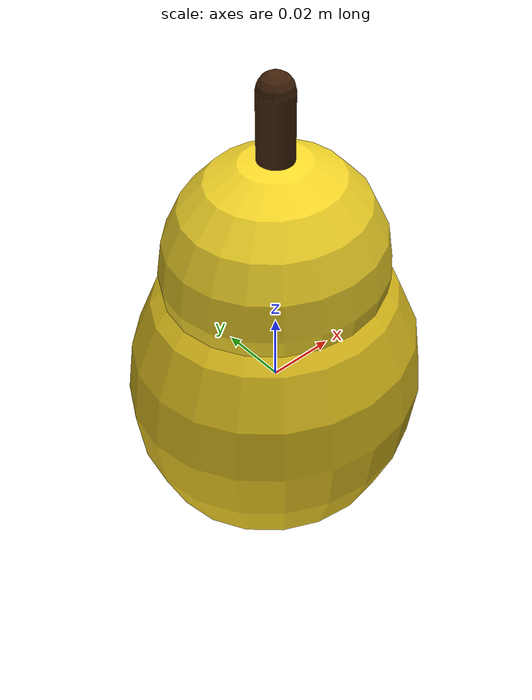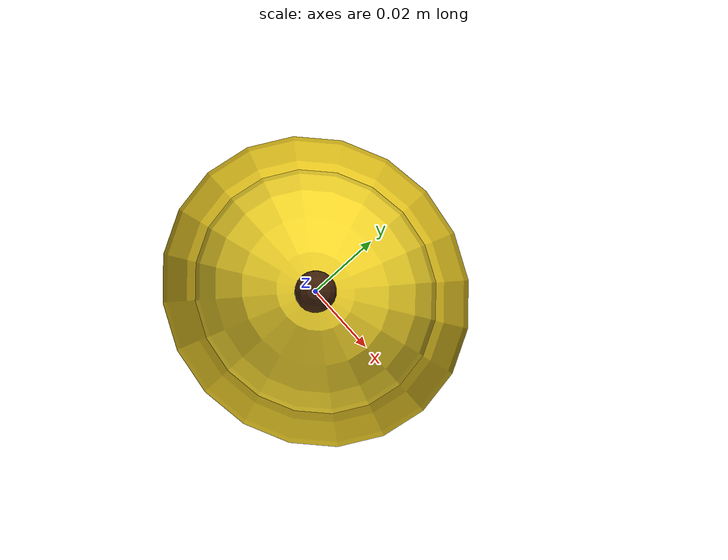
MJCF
<mujoco model="unitree_multitask_pear">
  <asset/>
  <worldbody>
    <body>
      <body name="object">
        <geom class="visual" type="ellipsoid" pos="0 0 0" size="0.043 0.040 0.052" rgba="0.91 0.78 0.12 1"/>
        <geom class="visual" type="ellipsoid" pos="0 0 0.040" size="0.032 0.030 0.034" rgba="0.96 0.84 0.16 1"/>
        <geom class="visual" type="capsule" pos="0 0 0.078" size="0.005 0.014" rgba="0.25 0.13 0.04 1"/>
        <geom class="collision" type="ellipsoid" pos="0 0 0" size="0.043 0.040 0.052"/>
        <geom class="collision" type="ellipsoid" pos="0 0 0.040" size="0.032 0.030 0.034"/>
      </body>
      <site rgba="0 0 0 0" size="0.005" pos="0 0 -0.052" name="bottom_site"/>
      <site rgba="0 0 0 0" size="0.005" pos="0 0 0.092" name="top_site"/>
      <site rgba="0 0 0 0" size="0.005" pos="0.045 0.045 0.020" name="horizontal_radius_site"/>
    </body>
  </worldbody>
  <default>
    <default class="visual"><geom group="1" contype="0" conaffinity="0" density="90"/></default>
    <default class="collision"><geom group="0" rgba="1 1 1 0" density="90" friction="1.2 0.3 0.1"/></default>
  </default>
</mujoco>
